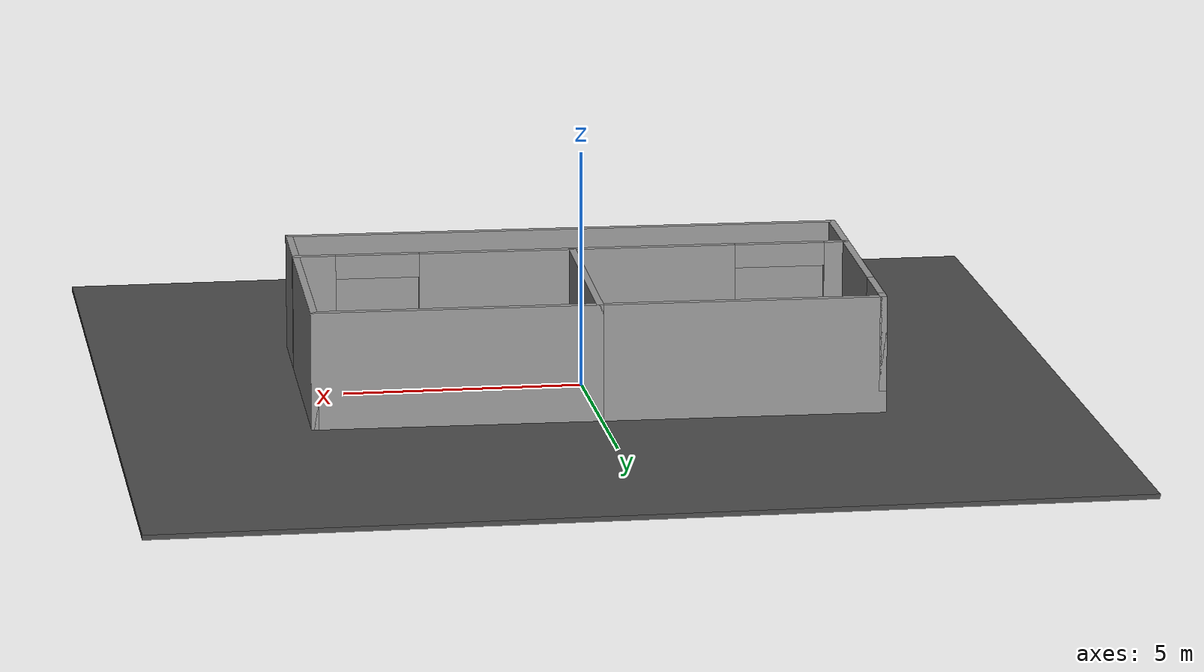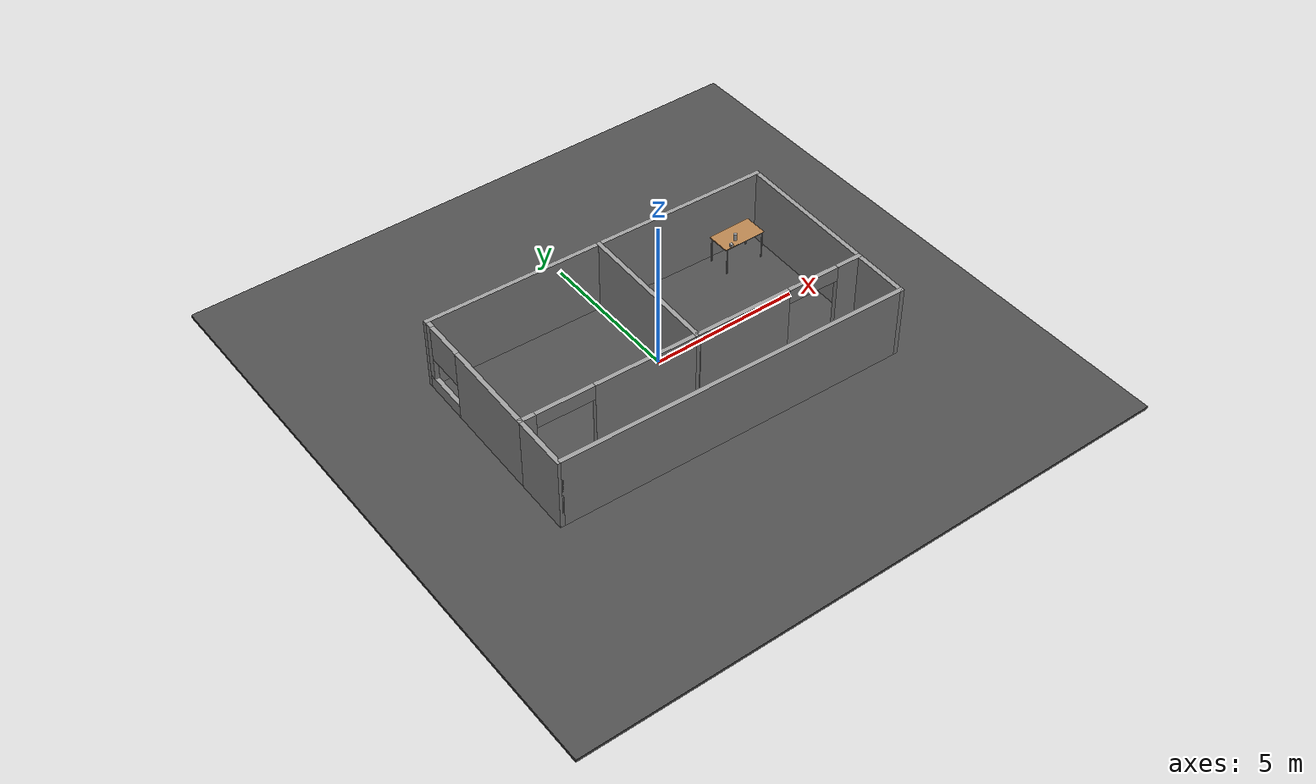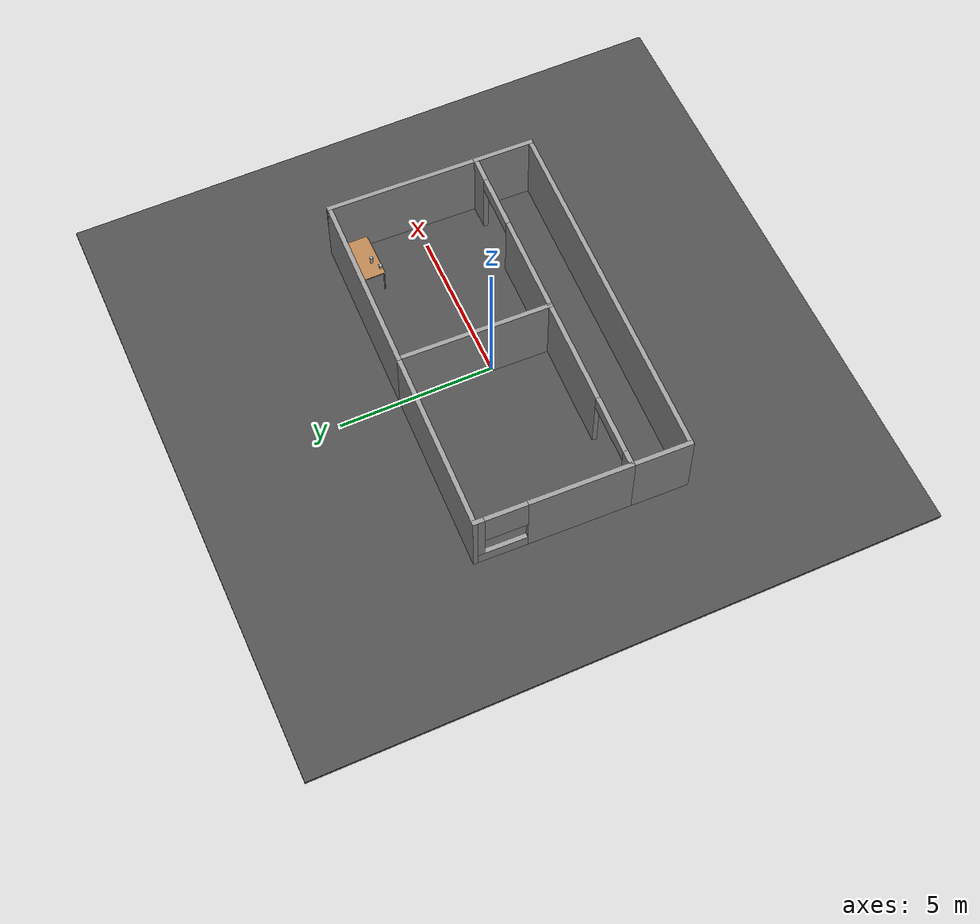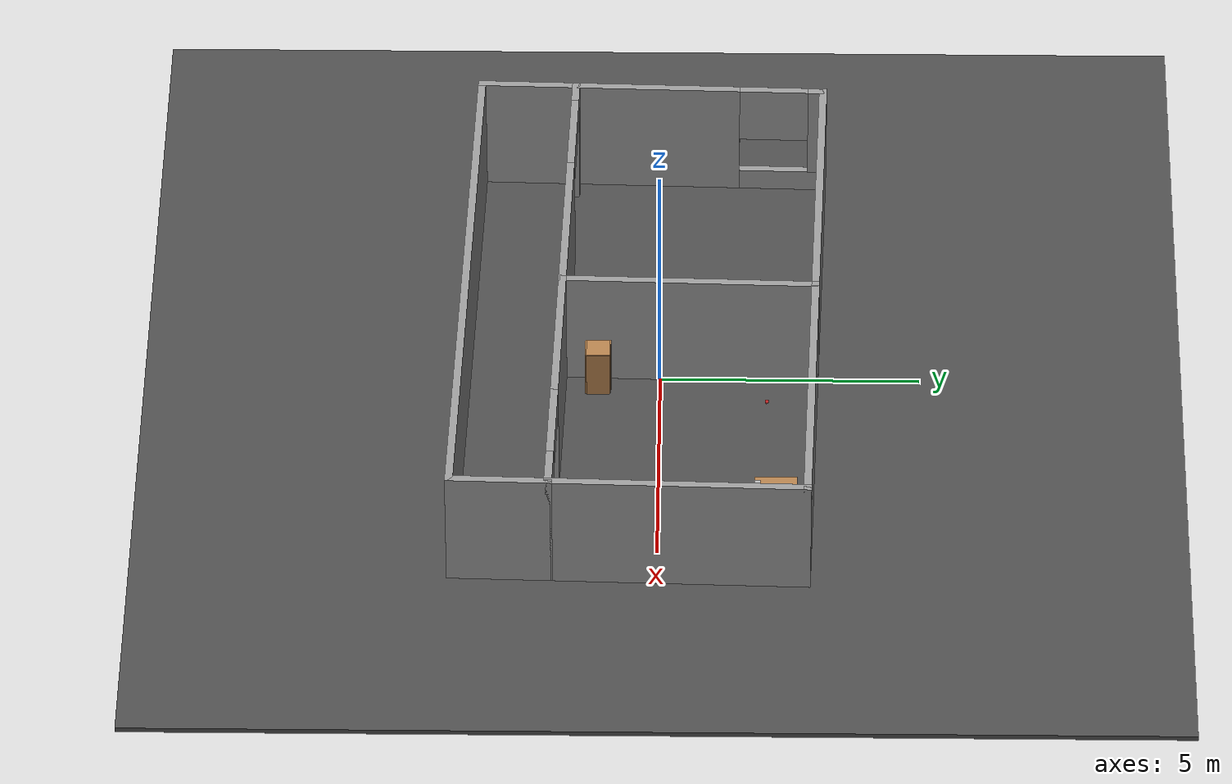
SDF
<sdf version="1.6">
 <world name="default">
  <scene><ambient>0.5 0.5 0.5 1</ambient><background>0.5 0.5 0.5 1</background><shadows>0</shadows></scene>
  <physics name="default_physics" default="0" type="ode">
   <ode>
    <solver>
     <type>quick</type>
     <iters>10</iters>
     <sor>1.3</sor>
     <use_dynamic_moi_rescaling>0</use_dynamic_moi_rescaling>
    </solver>
    <constraints>
     <cfm>0</cfm>
     <erp>0.2</erp>
     <contact_max_correcting_vel>100</contact_max_correcting_vel>
     <contact_surface_layer>0.001</contact_surface_layer>
    </constraints>
   </ode>
   <real_time_update_rate>1000</real_time_update_rate>
   <max_step_size>0.001</max_step_size>
   <real_time_factor>1</real_time_factor>
  </physics>
  <light name="directional_light_1" type="directional">
   <cast_shadows>0</cast_shadows>
   <pose>0 0 30 0.1 0.1 0</pose>
   <diffuse>1 1 1 1</diffuse>
   <specular>0.1 0.1 0.1 1</specular>
   <attenuation><range>300</range></attenuation>
   <direction>0.1 0.1 -1</direction>
  </light>
  <model name="plane_model">
   <static>1</static>
   <link name="plane_model_link">
    <collision name="plane_model_collision">
     <geometry><plane><normal>0 0 1</normal><size>1 1</size></plane></geometry>
     <surface>
      <friction><ode><mu>10</mu><mu2>10</mu2><fdir1>0 0 0</fdir1><slip1>0</slip1><slip2>0</slip2></ode></friction>
      <bounce><restitution_coefficient>0</restitution_coefficient><threshold>1e+06</threshold></bounce>
      <contact>
       <ode>
        <soft_cfm>0</soft_cfm>
        <soft_erp>0.2</soft_erp>
        <kp>1e+10</kp>
        <kd>1</kd>
        <max_vel>100</max_vel>
        <min_depth>0.0001</min_depth>
       </ode>
      </contact>
     </surface>
    </collision>
    <velocity_decay><linear>0</linear><angular>0</angular></velocity_decay>
   </link>
  </model>
  <model name="asphalt_plane">
   <static>1</static>
   <link name="link">
    <collision name="collision"><geometry><box><size>20 20 0.1</size></box></geometry></collision>
    <visual name="visual">
     <cast_shadows>0</cast_shadows>
     <geometry><box><size>20 20 0.1</size></box></geometry>
     <material>
      <script>
       <uri>model://asphalt_plane/materials/scripts</uri>
       <uri>model://asphalt_plane/materials/textures</uri>
       <name>vrc/asphalt</name>
      </script>
     </material>
    </visual>
    <velocity_decay><linear>0</linear><angular>0</angular></velocity_decay>
   </link>
   <pose>-0.010451 0.055967 0 0 -0 0</pose>
  </model>
  <spherical_coordinates>
   <surface_model>EARTH_WGS84</surface_model>
   <latitude_deg>0</latitude_deg>
   <longitude_deg>0</longitude_deg>
   <elevation>0</elevation>
   <heading_deg>0</heading_deg>
  </spherical_coordinates>
  <gravity>0 0 -9.81</gravity>
  <magnetic_field>6e-06 2.3e-05 -4.2e-05</magnetic_field>
  <atmosphere type="adiabatic"/>
  <model name="smaller_tworooms">
   <pose>-0.031771 -0.367239 0 0 -0 3.11512</pose>
   <link name="Wall_0">
    <pose>2.925 1.5 0 0 -0 0</pose>
    <visual name="Wall_0_Visual_0">
     <pose>-1.22619 0 1.25 0 -0 0</pose>
     <geometry><box><size>3.54761 0.15 2.5</size></box></geometry>
     <material>
      <script><uri>file://media/materials/scripts/gazebo.material</uri><name>Gazebo/Grey</name></script>
      <ambient>1 1 1 1</ambient>
     </material>
     <meta><layer>0</layer></meta>
    </visual>
    <collision name="Wall_0_Collision_0">
     <geometry><box><size>3.54761 0.15 2.5</size></box></geometry>
     <pose>-1.22619 0 1.25 0 -0 0</pose>
    </collision>
    <visual name="Wall_0_Visual_1">
     <pose>2.72664 0 1.25 0 -0 0</pose>
     <geometry><box><size>0.546712 0.15 2.5</size></box></geometry>
     <material>
      <script><uri>file://media/materials/scripts/gazebo.material</uri><name>Gazebo/Grey</name></script>
      <ambient>1 1 1 1</ambient>
     </material>
     <meta><layer>0</layer></meta>
    </visual>
    <collision name="Wall_0_Collision_1">
     <geometry><box><size>0.546712 0.15 2.5</size></box></geometry>
     <pose>2.72664 0 1.25 0 -0 0</pose>
    </collision>
    <visual name="Wall_0_Visual_2">
     <pose>1.50045 0 2.25 0 -0 0</pose>
     <geometry><box><size>1.90568 0.15 0.5</size></box></geometry>
     <material>
      <script><uri>file://media/materials/scripts/gazebo.material</uri><name>Gazebo/Grey</name></script>
      <ambient>1 1 1 1</ambient>
     </material>
     <meta><layer>0</layer></meta>
    </visual>
    <collision name="Wall_0_Collision_2">
     <geometry><box><size>1.90568 0.15 0.5</size></box></geometry>
     <pose>1.50045 0 2.25 0 -0 0</pose>
    </collision>
   </link>
   <link name="Wall_1">
    <pose>5.85 -0.925 0 0 0 -1.5708</pose>
    <visual name="Wall_1_Visual_0">
     <pose>-0.854528 0 1.25 0 -0 0</pose>
     <geometry><box><size>3.29094 0.15 2.5</size></box></geometry>
     <material>
      <script><uri>file://media/materials/scripts/gazebo.material</uri><name>Gazebo/Grey</name></script>
      <ambient>1 1 1 1</ambient>
     </material>
     <meta><layer>0</layer></meta>
    </visual>
    <collision name="Wall_1_Collision_0">
     <geometry><box><size>3.29094 0.15 2.5</size></box></geometry>
     <pose>-0.854528 0 1.25 0 -0 0</pose>
    </collision>
    <visual name="Wall_1_Visual_1">
     <pose>1.64547 0 0.25 0 -0 0</pose>
     <geometry><box><size>1.70905 0.15 0.5</size></box></geometry>
     <material>
      <script><uri>file://media/materials/scripts/gazebo.material</uri><name>Gazebo/Grey</name></script>
      <ambient>1 1 1 1</ambient>
     </material>
     <meta><layer>0</layer></meta>
    </visual>
    <collision name="Wall_1_Collision_1">
     <geometry><box><size>1.70905 0.15 0.5</size></box></geometry>
     <pose>1.64547 0 0.25 0 -0 0</pose>
    </collision>
    <visual name="Wall_1_Visual_2">
     <pose>2.31701 0 1.5 0 -0 0</pose>
     <geometry><box><size>0.365989 0.15 2</size></box></geometry>
     <material>
      <script><uri>file://media/materials/scripts/gazebo.material</uri><name>Gazebo/Grey</name></script>
      <ambient>1 1 1 1</ambient>
     </material>
     <meta><layer>0</layer></meta>
    </visual>
    <collision name="Wall_1_Collision_2">
     <geometry><box><size>0.365989 0.15 2</size></box></geometry>
     <pose>2.31701 0 1.5 0 -0 0</pose>
    </collision>
    <visual name="Wall_1_Visual_3">
     <pose>1.46248 0 1.9 0 -0 0</pose>
     <geometry><box><size>1.34307 0.15 1.2</size></box></geometry>
     <material>
      <script><uri>file://media/materials/scripts/gazebo.material</uri><name>Gazebo/Grey</name></script>
      <ambient>1 1 1 1</ambient>
     </material>
     <meta><layer>0</layer></meta>
    </visual>
    <collision name="Wall_1_Collision_3">
     <geometry><box><size>1.34307 0.15 1.2</size></box></geometry>
     <pose>1.46248 0 1.9 0 -0 0</pose>
    </collision>
   </link>
   <link name="Wall_10">
    <collision name="Wall_10_Collision">
     <geometry><box><size>2 0.15 2.5</size></box></geometry>
     <pose>0 0 1.25 0 -0 0</pose>
    </collision>
    <visual name="Wall_10_Visual">
     <pose>0 0 1.25 0 -0 0</pose>
     <geometry><box><size>2 0.15 2.5</size></box></geometry>
     <material>
      <script><uri>file://media/materials/scripts/gazebo.material</uri><name>Gazebo/Grey</name></script>
      <ambient>1 1 1 1</ambient>
     </material>
     <meta><layer>0</layer></meta>
    </visual>
    <pose>5.85 2.425 0 0 0 -1.5708</pose>
   </link>
   <link name="Wall_14">
    <collision name="Wall_14_Collision">
     <geometry><box><size>2 0.15 2.5</size></box></geometry>
     <pose>0 0 1.25 0 -0 0</pose>
    </collision>
    <visual name="Wall_14_Visual">
     <pose>0 0 1.25 0 -0 0</pose>
     <geometry><box><size>2 0.15 2.5</size></box></geometry>
     <material>
      <script><uri>file://media/materials/scripts/gazebo.material</uri><name>Gazebo/Grey</name></script>
      <ambient>1 1 1 1</ambient>
     </material>
     <meta><layer>0</layer></meta>
    </visual>
    <pose>-5.85 2.425 0 0 -0 1.5708</pose>
   </link>
   <link name="Wall_16">
    <collision name="Wall_16_Collision">
     <geometry><box><size>11.75 0.15 2.5</size></box></geometry>
     <pose>0 0 1.25 0 -0 0</pose>
    </collision>
    <visual name="Wall_16_Visual">
     <pose>0 0 1.25 0 -0 0</pose>
     <geometry><box><size>11.75 0.15 2.5</size></box></geometry>
     <material>
      <script><uri>file://media/materials/scripts/gazebo.material</uri><name>Gazebo/Grey</name></script>
      <ambient>1 1 1 1</ambient>
     </material>
     <meta><layer>0</layer></meta>
    </visual>
    <pose>-0.05 3.35 0 0 -0 0</pose>
   </link>
   <link name="Wall_2">
    <collision name="Wall_2_Collision">
     <geometry><box><size>6 0.15 2.5</size></box></geometry>
     <pose>0 0 1.25 0 -0 0</pose>
    </collision>
    <visual name="Wall_2_Visual">
     <pose>0 0 1.25 0 -0 0</pose>
     <geometry><box><size>6 0.15 2.5</size></box></geometry>
     <material>
      <script><uri>file://media/materials/scripts/gazebo.material</uri><name>Gazebo/Grey</name></script>
      <ambient>1 1 1 1</ambient>
     </material>
     <meta><layer>0</layer></meta>
    </visual>
    <pose>2.925 -3.35 0 0 -0 3.14159</pose>
   </link>
   <link name="Wall_3">
    <collision name="Wall_3_Collision">
     <geometry><box><size>5 0.15 2.5</size></box></geometry>
     <pose>0 0 1.25 0 -0 0</pose>
    </collision>
    <visual name="Wall_3_Visual">
     <pose>0 0 1.25 0 -0 0</pose>
     <geometry><box><size>5 0.15 2.5</size></box></geometry>
     <material>
      <script><uri>file://media/materials/scripts/gazebo.material</uri><name>Gazebo/Grey</name></script>
      <ambient>1 1 1 1</ambient>
     </material>
     <meta><layer>0</layer></meta>
    </visual>
    <pose>0 -0.925 0 0 -0 1.5708</pose>
   </link>
   <link name="Wall_4">
    <pose>-2.925 1.5 0 0 -0 3.14159</pose>
    <visual name="Wall_4_Visual_0">
     <pose>-1.33728 0 1.25 0 -0 0</pose>
     <geometry><box><size>3.32543 0.15 2.5</size></box></geometry>
     <material>
      <script><uri>file://media/materials/scripts/gazebo.material</uri><name>Gazebo/Grey</name></script>
      <ambient>1 1 1 1</ambient>
     </material>
     <meta><layer>0</layer></meta>
    </visual>
    <collision name="Wall_4_Collision_0">
     <geometry><box><size>3.32543 0.15 2.5</size></box></geometry>
     <pose>-1.33728 0 1.25 0 -0 0</pose>
    </collision>
    <visual name="Wall_4_Visual_1">
     <pose>2.54516 0 1.25 0 -0 0</pose>
     <geometry><box><size>0.909682 0.15 2.5</size></box></geometry>
     <material>
      <script><uri>file://media/materials/scripts/gazebo.material</uri><name>Gazebo/Grey</name></script>
      <ambient>1 1 1 1</ambient>
     </material>
     <meta><layer>0</layer></meta>
    </visual>
    <collision name="Wall_4_Collision_1">
     <geometry><box><size>0.909682 0.15 2.5</size></box></geometry>
     <pose>2.54516 0 1.25 0 -0 0</pose>
    </collision>
    <visual name="Wall_4_Visual_2">
     <pose>1.20788 0 2.25 0 -0 0</pose>
     <geometry><box><size>1.76488 0.15 0.5</size></box></geometry>
     <material>
      <script><uri>file://media/materials/scripts/gazebo.material</uri><name>Gazebo/Grey</name></script>
      <ambient>1 1 1 1</ambient>
     </material>
     <meta><layer>0</layer></meta>
    </visual>
    <collision name="Wall_4_Collision_2">
     <geometry><box><size>1.76488 0.15 0.5</size></box></geometry>
     <pose>1.20788 0 2.25 0 -0 0</pose>
    </collision>
   </link>
   <link name="Wall_5">
    <collision name="Wall_5_Collision">
     <geometry><box><size>5 0.15 2.5</size></box></geometry>
     <pose>0 0 1.25 0 -0 0</pose>
    </collision>
    <visual name="Wall_5_Visual">
     <pose>0 0 1.25 0 -0 0</pose>
     <geometry><box><size>5 0.15 2.5</size></box></geometry>
     <material>
      <script><uri>file://media/materials/scripts/gazebo.material</uri><name>Gazebo/Grey</name></script>
      <ambient>1 1 1 1</ambient>
     </material>
     <meta><layer>0</layer></meta>
    </visual>
    <pose>-5.85 -0.925 0 0 0 -1.5708</pose>
   </link>
   <link name="Wall_6">
    <collision name="Wall_6_Collision">
     <geometry><box><size>6 0.15 2.5</size></box></geometry>
     <pose>0 0 1.25 0 -0 0</pose>
    </collision>
    <visual name="Wall_6_Visual">
     <pose>0 0 1.25 0 -0 0</pose>
     <geometry><box><size>6 0.15 2.5</size></box></geometry>
     <material>
      <script><uri>file://media/materials/scripts/gazebo.material</uri><name>Gazebo/Grey</name></script>
      <ambient>1 1 1 1</ambient>
     </material>
     <meta><layer>0</layer></meta>
    </visual>
    <pose>-2.925 -3.35 0 0 -0 0</pose>
   </link>
   <static>1</static>
  </model>
  <model name="table">
   <static>1</static>
   <link name="link">
    <collision name="surface">
     <pose>0 0 1 0 -0 0</pose>
     <geometry><box><size>1.5 0.8 0.03</size></box></geometry>
     <surface><friction><ode><mu>0.6</mu><mu2>0.6</mu2></ode></friction></surface>
    </collision>
    <visual name="visual1">
     <pose>0 0 1 0 -0 0</pose>
     <geometry><box><size>1.5 0.8 0.03</size></box></geometry>
     <material>
      <script><uri>file://media/materials/scripts/gazebo.material</uri><name>Gazebo/Wood</name></script>
     </material>
    </visual>
    <collision name="front_left_leg">
     <pose>0.68 0.38 0.5 0 -0 0</pose>
     <geometry><cylinder><radius>0.02</radius><length>1</length></cylinder></geometry>
    </collision>
    <visual name="front_left_leg">
     <pose>0.68 0.38 0.5 0 -0 0</pose>
     <geometry><cylinder><radius>0.02</radius><length>1</length></cylinder></geometry>
     <material>
      <script><uri>file://media/materials/scripts/gazebo.material</uri><name>Gazebo/Grey</name></script>
     </material>
    </visual>
    <collision name="front_right_leg">
     <pose>0.68 -0.38 0.5 0 -0 0</pose>
     <geometry><cylinder><radius>0.02</radius><length>1</length></cylinder></geometry>
    </collision>
    <visual name="front_right_leg">
     <pose>0.68 -0.38 0.5 0 -0 0</pose>
     <geometry><cylinder><radius>0.02</radius><length>1</length></cylinder></geometry>
     <material>
      <script><uri>file://media/materials/scripts/gazebo.material</uri><name>Gazebo/Grey</name></script>
     </material>
    </visual>
    <collision name="back_right_leg">
     <pose>-0.68 -0.38 0.5 0 -0 0</pose>
     <geometry><cylinder><radius>0.02</radius><length>1</length></cylinder></geometry>
    </collision>
    <visual name="back_right_leg">
     <pose>-0.68 -0.38 0.5 0 -0 0</pose>
     <geometry><cylinder><radius>0.02</radius><length>1</length></cylinder></geometry>
     <material>
      <script><uri>file://media/materials/scripts/gazebo.material</uri><name>Gazebo/Grey</name></script>
     </material>
    </visual>
    <collision name="back_left_leg">
     <pose>-0.68 0.38 0.5 0 -0 0</pose>
     <geometry><cylinder><radius>0.02</radius><length>1</length></cylinder></geometry>
    </collision>
    <visual name="back_left_leg">
     <pose>-0.68 0.38 0.5 0 -0 0</pose>
     <geometry><cylinder><radius>0.02</radius><length>1</length></cylinder></geometry>
     <material>
      <script><uri>file://media/materials/scripts/gazebo.material</uri><name>Gazebo/Grey</name></script>
     </material>
    </visual>
   </link>
   <pose>4.71201 2.24454 0 0 -0 0</pose>
  </model>
  <model name="cabinet">
   <static>1</static>
   <link name="cabinet_bottom_plate">
    <inertial>
     <pose>0 0 -1 0 -0 0</pose>
     <inertia><ixx>2.05</ixx><ixy>0</ixy><ixz>0</ixz><iyy>2.05</iyy><iyz>0</iyz><izz>2.05</izz></inertia>
     <mass>25</mass>
    </inertial>
    <collision name="cabinet_bottom_plate_geom">
     <pose>0 0 0.01 0 -0 0</pose>
     <geometry><box><size>0.45 0.45 0.02</size></box></geometry>
    </collision>
    <visual name="cabinet_bottom_plate_geom_visual">
     <pose>0 0 0.01 0 -0 0</pose>
     <geometry><box><size>0.45 0.45 0.02</size></box></geometry>
     <material>
      <script><uri>file://media/materials/scripts/gazebo.material</uri><name>Gazebo/Wood</name></script>
     </material>
    </visual>
    <collision name="cabinet_bottom_plate_geom_cabinet_back_plate">
     <pose>0.235 0 0.51 0 -0 0</pose>
     <geometry><box><size>0.02 0.45 1.02</size></box></geometry>
    </collision>
    <visual name="cabinet_bottom_plate_geom_cabinet_back_plate_visual">
     <pose>0.235 0 0.51 0 -0 0</pose>
     <geometry><box><size>0.02 0.45 1.02</size></box></geometry>
     <material>
      <script><uri>file://media/materials/scripts/gazebo.material</uri><name>Gazebo/Wood</name></script>
     </material>
    </visual>
    <collision name="cabinet_bottom_plate_geom_cabinet_left_plate">
     <pose>0 0.235 0.51 0 -0 0</pose>
     <geometry><box><size>0.45 0.02 1.02</size></box></geometry>
    </collision>
    <visual name="cabinet_bottom_plate_geom_cabinet_left_plate_visual">
     <pose>0 0.235 0.51 0 -0 0</pose>
     <geometry><box><size>0.45 0.02 1.02</size></box></geometry>
     <material>
      <script><uri>file://media/materials/scripts/gazebo.material</uri><name>Gazebo/Wood</name></script>
     </material>
    </visual>
    <collision name="cabinet_bottom_plate_geom_cabinet_middle_plate">
     <pose>0 0 0.51 0 -0 0</pose>
     <geometry><box><size>0.45 0.45 0.02</size></box></geometry>
    </collision>
    <visual name="cabinet_bottom_plate_geom_cabinet_middle_plate_visual">
     <pose>0 0 0.51 0 -0 0</pose>
     <geometry><box><size>0.45 0.45 0.02</size></box></geometry>
     <material>
      <script><uri>file://media/materials/scripts/gazebo.material</uri><name>Gazebo/Wood</name></script>
     </material>
    </visual>
    <collision name="cabinet_bottom_plate_geom_cabinet_right_plate">
     <pose>0 -0.235 0.51 0 -0 0</pose>
     <geometry><box><size>0.45 0.02 1.02</size></box></geometry>
    </collision>
    <visual name="cabinet_bottom_plate_geom_cabinet_right_plate_visual">
     <pose>0 -0.235 0.51 0 -0 0</pose>
     <geometry><box><size>0.45 0.02 1.02</size></box></geometry>
     <material>
      <script><uri>file://media/materials/scripts/gazebo.material</uri><name>Gazebo/Wood</name></script>
     </material>
    </visual>
    <collision name="cabinet_bottom_plate_geom_cabinet_top_plate">
     <pose>0 0 1.01 0 -0 0</pose>
     <geometry><box><size>0.45 0.45 0.02</size></box></geometry>
    </collision>
    <visual name="cabinet_bottom_plate_geom_cabinet_top_plate_visual">
     <pose>0 0 1.01 0 -0 0</pose>
     <geometry><box><size>0.45 0.45 0.02</size></box></geometry>
     <material>
      <script><uri>file://media/materials/scripts/gazebo.material</uri><name>Gazebo/Wood</name></script>
     </material>
    </visual>
   </link>
   <pose>0.251769 -1.18174 0 0 -0 0</pose>
  </model>
  <model name="beer">
   <link name="link">
    <pose>0 0 0.115 0 -0 0</pose>
    <inertial>
     <mass>0.39</mass>
     <inertia><ixx>0.00058</ixx><ixy>0</ixy><ixz>0</ixz><iyy>0.00058</iyy><iyz>0</iyz><izz>0.00019</izz></inertia>
    </inertial>
    <collision name="collision">
     <geometry><cylinder><radius>0.055</radius><length>0.23</length></cylinder></geometry>
    </collision>
    <visual name="visual">
     <geometry><cylinder><radius>0.055</radius><length>0.23</length></cylinder></geometry>
     <material>
      <script>
       <uri>model://beer/materials/scripts</uri>
       <uri>model://beer/materials/textures</uri>
       <name>Beer/Diffuse</name>
      </script>
     </material>
    </visual>
   </link>
   <pose>4.50477 2.07595 1.015 -3.2e-05 2e-06 0.004691</pose>
  </model>
  <model name="ball_bearing">
   <link name="link">
    <pose>0 0 0.003 0 -0 0</pose>
    <inertial>
     <mass>0.0011</mass>
     <inertia>
      <ixx>3.96e-09</ixx>
      <ixy>0</ixy>
      <ixz>0</ixz>
      <iyy>3.96e-09</iyy>
      <iyz>0</iyz>
      <izz>3.96e-09</izz>
     </inertia>
    </inertial>
    <collision name="collision">
     <geometry><sphere><radius>0.003</radius></sphere></geometry>
     <surface>
      <contact>
       <poissons_ratio>0.305</poissons_ratio>
       <elastic_modulus>2e+11</elastic_modulus>
       <ode><kp>100000</kp><kd>100</kd><max_vel>100</max_vel><min_depth>0.001</min_depth></ode>
      </contact>
      <friction>
       <torsional>
        <coefficient>1</coefficient>
        <use_patch_radius>0</use_patch_radius>
        <surface_radius>0.01</surface_radius>
       </torsional>
      </friction>
     </surface>
    </collision>
    <visual name="visual">
     <geometry><sphere><radius>0.003</radius></sphere></geometry>
     <material>
      <script><uri>file://media/materials/scripts/gazebo.material</uri><name>Gazebo/Grey</name></script>
     </material>
    </visual>
    <velocity_decay><linear>0</linear><angular>0.005</angular></velocity_decay>
   </link>
   <pose>3.20564 6.57238 0.049 0 -0 0</pose>
  </model>
  <model name="camera">
   <pose>4.21085 1.89915 1.065 -1e-06 1e-05 -0.016781</pose>
   <link name="link">
    <inertial>
     <mass>0.1</mass>
     <inertia>
      <ixx>0.000166667</ixx>
      <iyy>0.000166667</iyy>
      <izz>0.000166667</izz>
      <ixy>0</ixy>
      <ixz>0</ixz>
      <iyz>0</iyz>
     </inertia>
    </inertial>
    <collision name="collision"><geometry><box><size>0.1 0.1 0.1</size></box></geometry></collision>
    <visual name="visual"><geometry><box><size>0.1 0.1 0.1</size></box></geometry></visual>
    <sensor name="camera" type="camera">
     <camera name="__default__">
      <horizontal_fov>1.047</horizontal_fov>
      <image><width>320</width><height>240</height></image>
      <clip><near>0.1</near><far>100</far></clip>
     </camera>
     <always_on>1</always_on>
     <update_rate>30</update_rate>
     <visualize>1</visualize>
    </sensor>
   </link>
  </model>
  <model name="cricket_ball">
   <link name="link">
    <pose>0 0 0.0375 0 -0 0</pose>
    <inertial>
     <mass>0.1467</mass>
     <inertia>
      <ixx>8.25187e-05</ixx>
      <ixy>0</ixy>
      <ixz>0</ixz>
      <iyy>8.25187e-05</iyy>
      <iyz>0</iyz>
      <izz>8.25187e-05</izz>
     </inertia>
    </inertial>
    <collision name="collision">
     <geometry><sphere><radius>0.0375</radius></sphere></geometry>
     <surface>
      <contact>
       <poissons_ratio>0.347</poissons_ratio>
       <elastic_modulus>8.8e+09</elastic_modulus>
       <ode><kp>100000</kp><kd>100</kd><max_vel>100</max_vel><min_depth>0.001</min_depth></ode>
      </contact>
      <friction>
       <torsional>
        <coefficient>1</coefficient>
        <use_patch_radius>0</use_patch_radius>
        <surface_radius>0.01</surface_radius>
       </torsional>
      </friction>
     </surface>
    </collision>
    <visual name="visual">
     <geometry><sphere><radius>0.0375</radius></sphere></geometry>
     <material>
      <script><uri>file://media/materials/scripts/gazebo.material</uri><name>Gazebo/Red</name></script>
     </material>
    </visual>
    <velocity_decay><linear>0</linear><angular>0.005</angular></velocity_decay>
   </link>
   <pose>0.730383 2.07265 0.048986 0 -0 0</pose>
  </model>
 </world>
</sdf>
